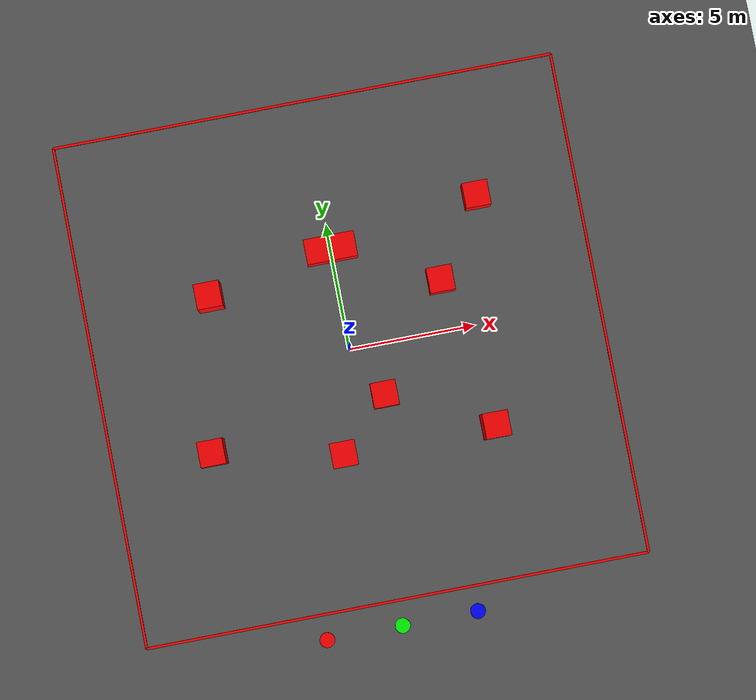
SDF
<sdf version="1.7">
 <world name="quadcopter_world">
  <physics type="ode"/>
  <plugin filename="gz-sim-physics-system" name="gz::sim::systems::Physics"/>
  <plugin filename="gz-sim-user-commands-system" name="gz::sim::systems::UserCommands"/>
  <plugin filename="gz-sim-scene-broadcaster-system" name="gz::sim::systems::SceneBroadcaster"/>
  <plugin filename="gz-sim-sensors-system" name="gz::sim::systems::Sensors">
   <render_engine>ogre2</render_engine>
  </plugin>
  <scene><ambient>0.4 0.4 0.4 1</ambient><background>0.7 0.85 1 1</background><shadows>true</shadows></scene>
  <light type="directional" name="sun">
   <pose>0 0 50 0 0 0</pose>
   <diffuse>1 1 1 1</diffuse>
   <specular>1 1 1 1</specular>
   <attenuation>
    <range>1000</range>
    <constant>0.9</constant>
    <linear>0.01</linear>
    <quadratic>0.001</quadratic>
   </attenuation>
   <direction>-0.4 -0.2 -1</direction>
  </light>
  <model name="ground_plane">
   <static>true</static>
   <link name="link">
    <collision name="collision">
     <geometry><plane><normal>0 0 1</normal><size>200 200</size></plane></geometry>
    </collision>
    <visual name="visual">
     <geometry><plane><normal>0 0 1</normal><size>200 200</size></plane></geometry>
     <material><ambient>0.3 0.3 0.3 1</ambient><diffuse>0.35 0.35 0.35 1</diffuse></material>
    </visual>
   </link>
  </model>
  <model name="pad_x1">
   <static>true</static>
   <pose>-3 -11 0 0 0 0</pose>
   <link name="link">
    <visual name="visual">
     <geometry><cylinder><radius>0.3</radius><length>0.05</length></cylinder></geometry>
     <material><ambient>1 0 0 1</ambient><diffuse>1 0 0 1</diffuse></material>
    </visual>
   </link>
  </model>
  <model name="pad_x2">
   <static>true</static>
   <pose>0 -11 0 0 0 0</pose>
   <link name="link">
    <visual name="visual">
     <geometry><cylinder><radius>0.3</radius><length>0.05</length></cylinder></geometry>
     <material><ambient>0 1 0 1</ambient><diffuse>0 1 0 1</diffuse></material>
    </visual>
   </link>
  </model>
  <model name="pad_x3">
   <static>true</static>
   <pose>3 -11 0 0 0 0</pose>
   <link name="link">
    <visual name="visual">
     <geometry><cylinder><radius>0.3</radius><length>0.05</length></cylinder></geometry>
     <material><ambient>0 0 1 1</ambient><diffuse>0 0 1 1</diffuse></material>
    </visual>
   </link>
  </model>
  <model name="search_area_outline">
   <static>true</static>
   <link name="line_bottom">
    <visual name="vis">
     <geometry><box><size>20 0.1 0.05</size></box></geometry>
     <material><ambient>1 0 0 1</ambient><diffuse>1 0 0 1</diffuse></material>
    </visual>
    <pose>0 -10 0.01 0 0 0</pose>
   </link>
   <link name="line_top">
    <visual name="vis">
     <geometry><box><size>20 0.1 0.05</size></box></geometry>
     <material><ambient>1 0 0 1</ambient><diffuse>1 0 0 1</diffuse></material>
    </visual>
    <pose>0 10 0.01 0 0 0</pose>
   </link>
   <link name="line_left">
    <visual name="vis">
     <geometry><box><size>0.1 20 0.05</size></box></geometry>
     <material><ambient>1 0 0 1</ambient><diffuse>1 0 0 1</diffuse></material>
    </visual>
    <pose>-10 0 0.01 0 0 0</pose>
   </link>
   <link name="line_right">
    <visual name="vis">
     <geometry><box><size>0.1 20 0.05</size></box></geometry>
     <material><ambient>1 0 0 1</ambient><diffuse>1 0 0 1</diffuse></material>
    </visual>
    <pose>10 0 0.01 0 0 0</pose>
   </link>
  </model>
  <model name="obs_n5_3">
   <static>true</static>
   <link name="link">
    <pose>-5 3 1 0 0 0</pose>
    <collision name="collision"><geometry><box><size>1 1 2</size></box></geometry></collision>
    <visual name="visual">
     <geometry><box><size>1 1 2</size></box></geometry>
     <material><ambient>1 0 0 1</ambient></material>
    </visual>
   </link>
  </model>
  <model name="obs_n6_n3">
   <static>true</static>
   <link name="link">
    <pose>-6 -3 1 0 0 0</pose>
    <collision name="collision"><geometry><box><size>1 1 2</size></box></geometry></collision>
    <visual name="visual">
     <geometry><box><size>1 1 2</size></box></geometry>
     <material><ambient>1 0 0 1</ambient></material>
    </visual>
   </link>
  </model>
  <model name="obs_0_4_wide">
   <static>true</static>
   <link name="link">
    <pose>0 4 0.5 0 0 0</pose>
    <collision name="collision"><geometry><box><size>2 1 1</size></box></geometry></collision>
    <visual name="visual">
     <geometry><box><size>2 1 1</size></box></geometry>
     <material><ambient>1 0 0 1</ambient></material>
    </visual>
   </link>
  </model>
  <model name="obs_n1_n4">
   <static>true</static>
   <link name="link">
    <pose>-1 -4 0.5 0 0 0</pose>
    <collision name="collision"><geometry><box><size>1 1 1</size></box></geometry></collision>
    <visual name="visual">
     <geometry><box><size>1 1 1</size></box></geometry>
     <material><ambient>1 0 0 1</ambient></material>
    </visual>
   </link>
  </model>
  <model name="obs_1_n2">
   <static>true</static>
   <link name="link">
    <pose>1 -2 0.5 0 0 0</pose>
    <collision name="collision"><geometry><box><size>1 1 1</size></box></geometry></collision>
    <visual name="visual">
     <geometry><box><size>1 1 1</size></box></geometry>
     <material><ambient>1 0 0 1</ambient></material>
    </visual>
   </link>
  </model>
  <model name="obs_5_n4">
   <static>true</static>
   <link name="link">
    <pose>5 -4 1 0 0 0</pose>
    <collision name="collision"><geometry><box><size>1 1 2</size></box></geometry></collision>
    <visual name="visual">
     <geometry><box><size>1 1 2</size></box></geometry>
     <material><ambient>1 0 0 1</ambient></material>
    </visual>
   </link>
  </model>
  <model name="obs_4_2">
   <static>true</static>
   <link name="link">
    <pose>4 2 0.5 0 0 0</pose>
    <collision name="collision"><geometry><box><size>1 1 1</size></box></geometry></collision>
    <visual name="visual">
     <geometry><box><size>1 1 1</size></box></geometry>
     <material><ambient>1 0 0 1</ambient></material>
    </visual>
   </link>
  </model>
  <model name="obs_6_5">
   <static>true</static>
   <link name="link">
    <pose>6 5 0.5 0 0 0</pose>
    <collision name="collision"><geometry><box><size>1 1 1</size></box></geometry></collision>
    <visual name="visual">
     <geometry><box><size>1 1 1</size></box></geometry>
     <material><ambient>1 0 0 1</ambient></material>
    </visual>
   </link>
  </model>
 </world>
</sdf>
